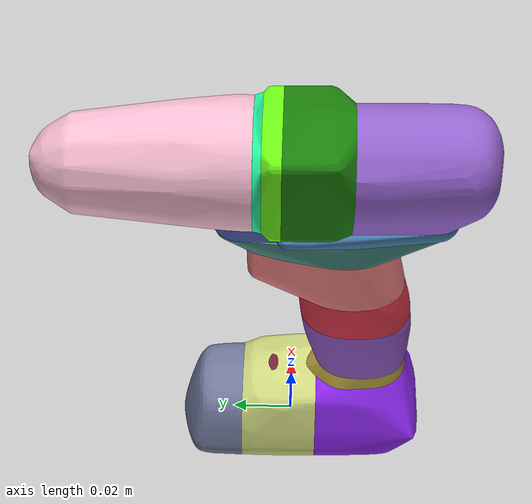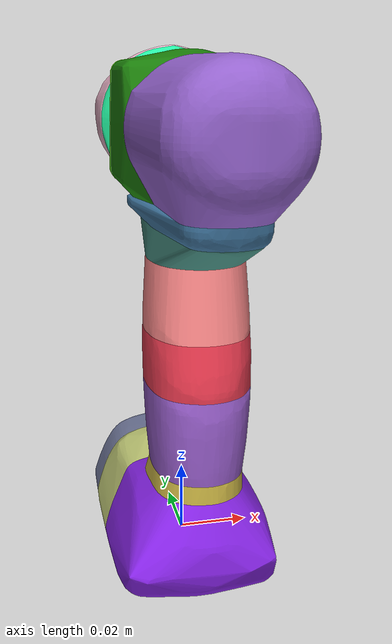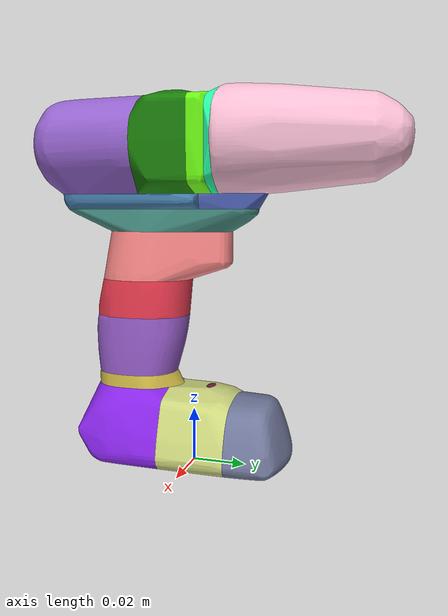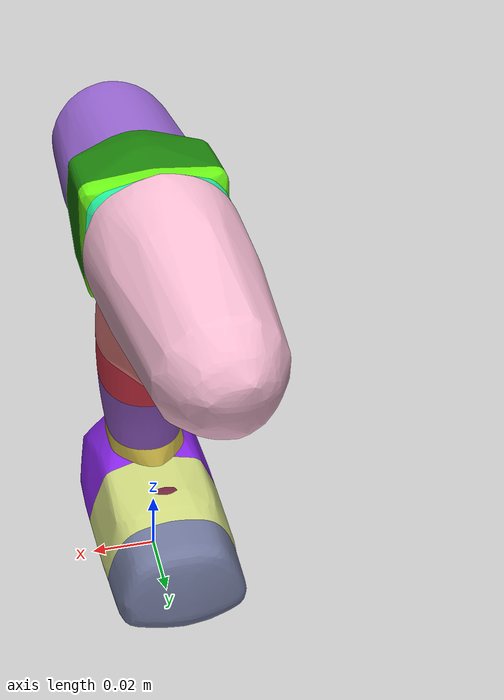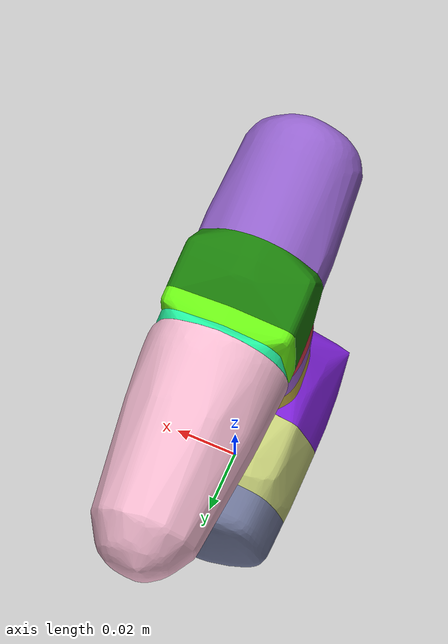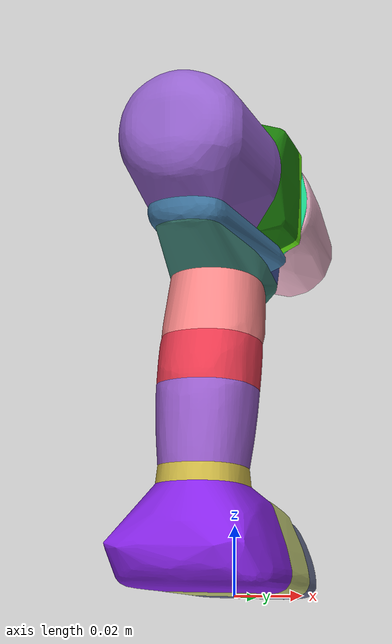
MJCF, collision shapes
<mujoco model="power_drill">
  <default>
    <default class="visual">
      <geom group="1" type="mesh" contype="0" conaffinity="0"/>
    </default>
    <default class="collision">
      <geom group="0" type="mesh"/>
    </default>
  </default>
  <asset>
    <material name="material_0" specular="0.0" shininess="0.0" rgba="0.800000 0.800000 0.800000 1.000000"/>
    <mesh name="power_drill" file="power_drill.obj"/>
    <mesh name="power_drill_collision_0" file="power_drill_collision_0.obj"/>
    <mesh name="power_drill_collision_1" file="power_drill_collision_1.obj"/>
    <mesh name="power_drill_collision_2" file="power_drill_collision_2.obj"/>
    <mesh name="power_drill_collision_3" file="power_drill_collision_3.obj"/>
    <mesh name="power_drill_collision_4" file="power_drill_collision_4.obj"/>
    <mesh name="power_drill_collision_5" file="power_drill_collision_5.obj"/>
    <mesh name="power_drill_collision_6" file="power_drill_collision_6.obj"/>
    <mesh name="power_drill_collision_7" file="power_drill_collision_7.obj"/>
    <mesh name="power_drill_collision_8" file="power_drill_collision_8.obj"/>
    <mesh name="power_drill_collision_9" file="power_drill_collision_9.obj"/>
    <mesh name="power_drill_collision_10" file="power_drill_collision_10.obj"/>
    <mesh name="power_drill_collision_11" file="power_drill_collision_11.obj"/>
    <mesh name="power_drill_collision_12" file="power_drill_collision_12.obj"/>
    <mesh name="power_drill_collision_13" file="power_drill_collision_13.obj"/>
    <mesh name="power_drill_collision_14" file="power_drill_collision_14.obj"/>
    <mesh name="power_drill_collision_15" file="power_drill_collision_15.obj"/>
  </asset>
  <worldbody>
    <body>
      <body name="object">
        <geom material="material_0" mesh="power_drill" class="visual"/>
        <geom mesh="power_drill_collision_0" rgba="0.9778038433729702 0.5313122733413662 0.5320754469806913 1" class="collision"/>
        <geom mesh="power_drill_collision_1" rgba="0.26175382319324625 0.5386582900782007 0.4904746319968889 1" class="collision"/>
        <geom mesh="power_drill_collision_2" rgba="0.579601633073333 0.38896279615947493 0.8035699158156704 1" class="collision"/>
        <geom mesh="power_drill_collision_3" rgba="0.4402115400001201 0.1336295934859827 0.23418405550099686 1" class="collision"/>
        <geom mesh="power_drill_collision_4" rgba="0.29891637389098435 0.3752201390564105 0.6997729204703027 1" class="collision"/>
        <geom mesh="power_drill_collision_5" rgba="0.8106704089759585 0.7249167337538956 0.2721700442254582 1" class="collision"/>
        <geom mesh="power_drill_collision_6" rgba="0.9076937285924436 0.22601049976023369 0.3083401064170437 1" class="collision"/>
        <geom mesh="power_drill_collision_7" rgba="0.2541274356583556 0.4729253524363416 0.6422765104508645 1" class="collision"/>
        <geom mesh="power_drill_collision_8" rgba="0.5307437661674116 0.14061738799644596 0.9072927203945556 1" class="collision"/>
        <geom mesh="power_drill_collision_9" rgba="0.5935921479855598 0.3668759866276138 0.7948217993283037 1" class="collision"/>
        <geom mesh="power_drill_collision_10" rgba="0.9596538348905652 0.7335826664695604 0.8187498182124566 1" class="collision"/>
        <geom mesh="power_drill_collision_11" rgba="0.10493237787029375 0.4952654524629272 0.04073088980505779 1" class="collision"/>
        <geom mesh="power_drill_collision_12" rgba="0.4384399860181737 0.4684522627275032 0.6050750796954381 1" class="collision"/>
        <geom mesh="power_drill_collision_13" rgba="0.7953698684416379 0.8313660455486428 0.48576900931209366 1" class="collision"/>
        <geom mesh="power_drill_collision_14" rgba="0.14119076224425775 0.9749876616392558 0.6455913668150313 1" class="collision"/>
        <geom mesh="power_drill_collision_15" rgba="0.41746608775350924 0.9618174610942302 0.07723358259557278 1" class="collision"/>
      </body>
    </body>
  </worldbody>
</mujoco>
